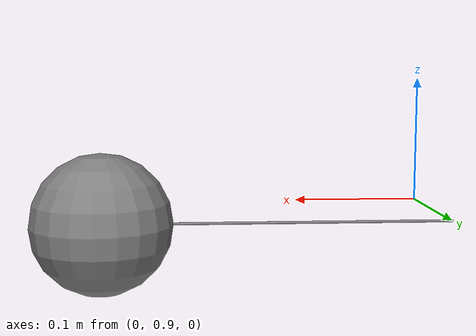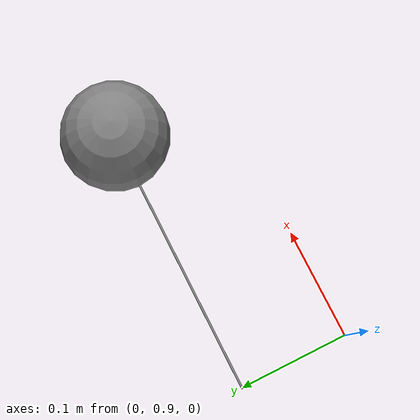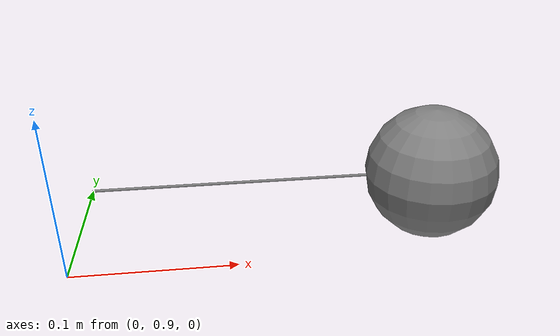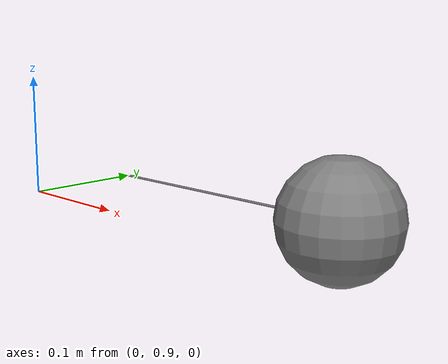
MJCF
<mujoco model="pendulum">
  <option gravity="0 -9.81 0" />

  <worldbody>
    <light diffuse=".5 .5 .5" pos="0 0 3" dir="0 0 -1"/>

    <body name="hinge_body" pos="0 1 0">
      <joint name="hinge_joint" type="hinge" axis="0 0 1" damping="0" friction="0"/>

      <!-- Massless rod -->
      <geom name="rod" type="capsule" fromto="0 0 0 0.2485 0 0" size="0.001" mass="0" contype="0" conaffinity="0"/>

      <body name="bob_body" pos="0.2485 0 0">
        <!-- Spherical bob: diameter 0.1m -> radius 0.05m -->
        <geom name="bob" type="sphere" size="0.05" mass="1.0"/>
      </body>
    </body>
  </worldbody>

  <!-- Initial conditions: Pendulum starts horizontal (+90 deg from vertical) -->
  <!-- Since +y is upward and gravity is [0, -9.81, 0], vertical is [0, 1, 0] -->
  <!-- Horizontal is [1, 0, 0] or [-1, 0, 0]. The prompt says bob positioned along +x from hinge. -->

</mujoco>
